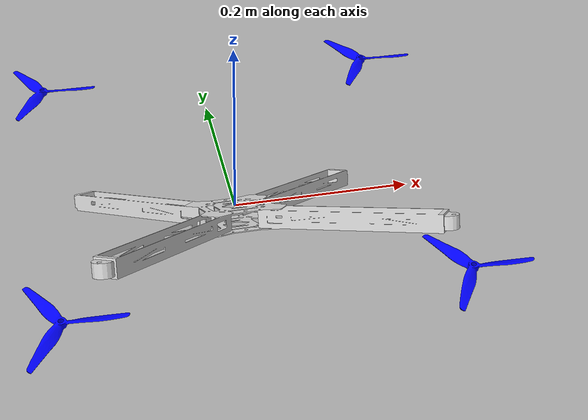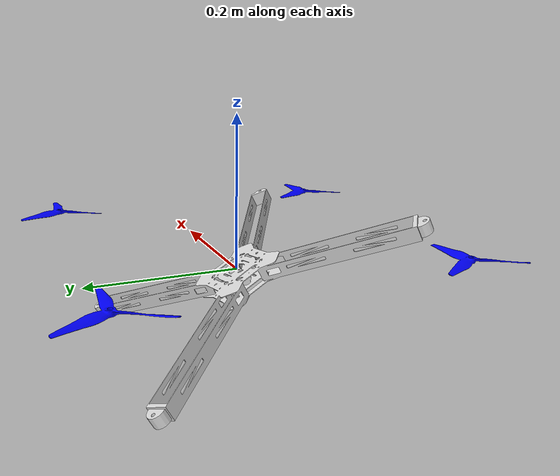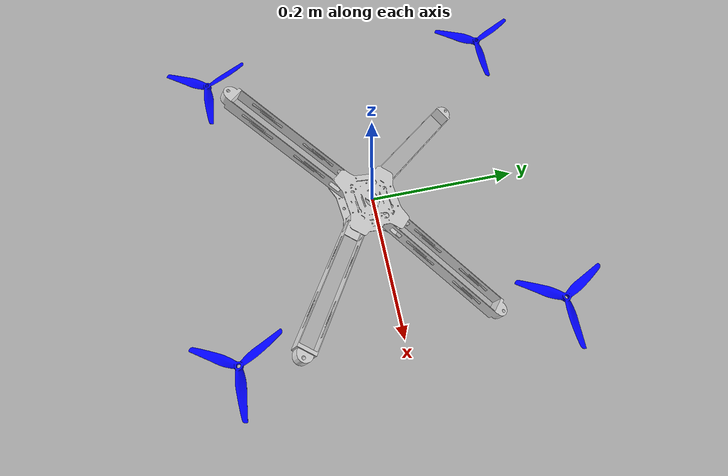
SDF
<sdf version='1.11'>
  <model name='quadcopter'>
    <link name='base_link'>
      <inertial>
        <pose>0 0 0 0 0 0</pose>
        <mass>1.5</mass>
        <inertia>
          <ixx>0.10000000000000001</ixx>
          <ixy>0</ixy>
          <ixz>0</ixz>
          <iyy>0.10000000000000001</iyy>
          <iyz>0</iyz>
          <izz>0.10000000000000001</izz>
        </inertia>
      </inertial>
      <collision name='base_link_collision'>
        <pose>0 0 0 0 0 0</pose>
        <geometry>
          <mesh>
            <scale>1 1 1</scale>
            <uri>file:///home/aerobase/drone_model/src/drone_description/meshes/base_link.STL</uri>
          </mesh>
        </geometry>
      </collision>

      <collision name='base_link_fixed_joint_lump__front_left_collision_1'>
        <pose>0.20000000000000001 0.20000000000000001 0.050000000000000003 0 0 0</pose>
        <geometry>
          <mesh>
            <scale>0.5 0.5 0.5</scale>
            <uri>file:///home/aerobase/drone_model/src/drone_description/meshes/rotor1.STL</uri>
          </mesh>
        </geometry>
      </collision>
      <collision name='base_link_fixed_joint_lump__front_right_collision_2'>
        <pose>0.20000000000000001 -0.20000000000000001 0.050000000000000003 0 0 0</pose>
        <geometry>
          <mesh>
            <scale>0.5 0.5 0.5</scale>
            <uri>file:///home/aerobase/drone_model/src/drone_description/meshes/rotor2.STL</uri>
          </mesh>
        </geometry>
      </collision>
      <collision name='base_link_fixed_joint_lump__rear_left_collision_3'>
        <pose>-0.20000000000000001 0.20000000000000001 0.050000000000000003 0 0 0</pose>
        <geometry>
          <mesh>
            <scale>0.5 0.5 0.5</scale>
            <uri>file:///home/aerobase/drone_model/src/drone_description/meshes/rotor3.STL</uri>
          </mesh>
        </geometry>
      </collision>
      <collision name='base_link_fixed_joint_lump__rear_right_collision_4'>
        <pose>-0.20000000000000001 -0.20000000000000001 0.050000000000000003 0 0 0</pose>
        <geometry>
          <mesh>
            <scale>0.5 0.5 0.5</scale>
            <uri>file:///home/aerobase/drone_model/src/drone_description/meshes/rotor4.STL</uri>
          </mesh>
        </geometry>
      </collision>
      <visual name='base_link_visual'>
        <pose>0 0 0 0 0 0</pose>
        <geometry>
          <mesh>
            <scale>1 1 1</scale>
            <uri>file:///home/aerobase/drone_model/src/drone_description/meshes/base_link.STL</uri>
          </mesh>
        </geometry>
        <material>
          <diffuse>0.875 0.875 0.875 1</diffuse>
          <ambient>0.875 0.875 0.875 1</ambient>
        </material>
      </visual>
      <visual name='base_link_fixed_joint_lump__front_left_visual_1'>
        <pose>0.20000000000000001 0.20000000000000001 0.050000000000000003 0 0 0</pose>
        <geometry>
          <mesh>
            <scale>0.5 0.5 0.5</scale>
            <uri>file:///home/aerobase/drone_model/src/drone_description/meshes/rotor1.STL</uri>
          </mesh>
        </geometry>
        <material>
          <diffuse>0 0 1 1</diffuse>
          <ambient>0 0 1 1</ambient>
        </material>
      </visual>
      <visual name='base_link_fixed_joint_lump__front_right_visual_2'>
        <pose>0.20000000000000001 -0.20000000000000001 0.050000000000000003 0 0 0</pose>
        <geometry>
          <mesh>
            <scale>0.5 0.5 0.5</scale>
            <uri>file:///home/aerobase/drone_model/src/drone_description/meshes/rotor2.STL</uri>
          </mesh>
        </geometry>
        <material>
          <diffuse>0 0 1 1</diffuse>
          <ambient>0 0 1 1</ambient>
        </material>
      </visual>
      <visual name='base_link_fixed_joint_lump__rear_left_visual_3'>
        <pose>-0.20000000000000001 0.20000000000000001 0.050000000000000003 0 0 0</pose>
        <geometry>
          <mesh>
            <scale>0.5 0.5 0.5</scale>
            <uri>file:///home/aerobase/drone_model/src/drone_description/meshes/rotor3.STL</uri>
          </mesh>
        </geometry>
        <material>
          <diffuse>0 0 1 1</diffuse>
          <ambient>0 0 1 1</ambient>
        </material>
      </visual>
      <visual name='base_link_fixed_joint_lump__rear_right_visual_4'>
        <pose>-0.20000000000000001 -0.20000000000000001 0.050000000000000003 0 0 0</pose>
        <geometry>
          <mesh>
            <scale>0.5 0.5 0.5</scale>
            <uri>file:///home/aerobase/drone_model/src/drone_description/meshes/rotor4.STL</uri>
          </mesh>
        </geometry>
        <material>
          <diffuse>0 0 1 1</diffuse>
          <ambient>0 0 1 1</ambient>
        </material>
      </visual>
    </link>

    <frame name='front_left_joint' attached_to='base_link'>
      <pose>0.20000000000000001 0.20000000000000001 0.050000000000000003 0 0 0</pose>
    </frame>
    <frame name='front_left' attached_to='front_left_joint'>
      <pose>0 0 0 0 0 0</pose>
    </frame>
    <frame name='front_right_joint' attached_to='base_link'>
      <pose>0.20000000000000001 -0.20000000000000001 0.050000000000000003 0 0 0</pose>
    </frame>
    <frame name='front_right' attached_to='front_right_joint'>
      <pose>0 0 0 0 0 0</pose>
    </frame>
    <frame name='rear_left_joint' attached_to='base_link'>
      <pose>-0.20000000000000001 0.20000000000000001 0.050000000000000003 0 0 0</pose>
    </frame>
    <frame name='rear_left' attached_to='rear_left_joint'>
      <pose>0 0 0 0 0 0</pose>
    </frame>
    <frame name='rear_right_joint' attached_to='base_link'>
      <pose>-0.20000000000000001 -0.20000000000000001 0.050000000000000003 0 0 0</pose>
    </frame>
    <frame name='rear_right' attached_to='rear_right_joint'>
      <pose>0 0 0 0 0 0</pose>
    </frame>
    <!-- Gimbal inclusion -->
    <plugin filename="gz-sim-joint-position-controller-system" name="gz::sim::systems::JointPositionController">
      <joint_name>gimbal::roll_joint</joint_name>
      <topic>/gimbal/cmd_roll</topic>
      <p_gain>2</p_gain>
    </plugin>
    <plugin filename="gz-sim-joint-position-controller-system" name="gz::sim::systems::JointPositionController">
      <joint_name>gimbal::pitch_joint</joint_name>
      <topic>/gimbal/cmd_pitch</topic>
      <p_gain>2</p_gain>
    </plugin>
    <plugin filename="gz-sim-joint-position-controller-system" name="gz::sim::systems::JointPositionController">
      <joint_name>gimbal::yaw_joint</joint_name>
      <topic>/gimbal/cmd_yaw</topic>
      <p_gain>2</p_gain>
    </plugin>
    -->

  <plugin name="mavlink_interface" filename="libgazebo_mavlink_interface.so">
    <robotNamespace/>
    <serialEnabled>0</serialEnabled>
    <udpEnabled>1</udpEnabled>
    <udpPort>14560</udpPort>
    <modelName>quadcopter</modelName>
    <imuName>imu0</imuName>
    <mavlink_addr>INADDR_ANY</mavlink_addr>
    <mavlink_udp_port>14560</mavlink_udp_port>
    <mavlink_tcp_port>4560</mavlink_tcp_port>
    <motorSpeedCommandPubTopic>/gazebo/command/motor_speed</motorSpeedCommandPubTopic>
  </plugin>

  </model>
</sdf>
